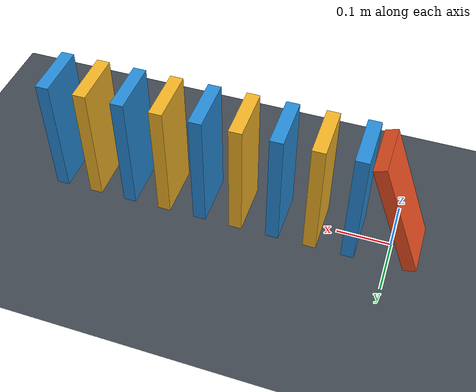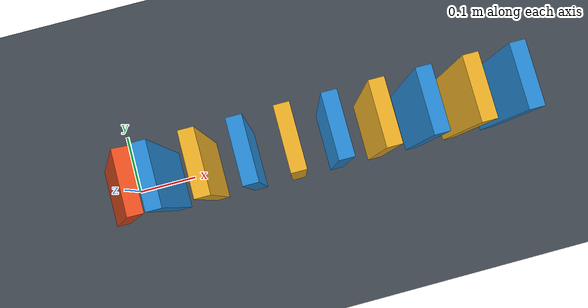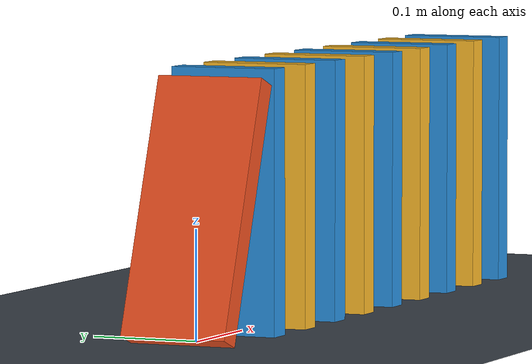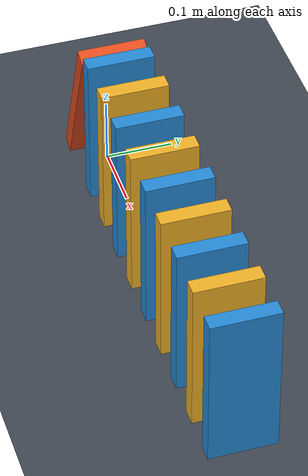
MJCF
<mujoco model="ten_dominoes">
  <compiler angle="degree"/>
  <option timestep="0.002"/>

  <worldbody>
    <light name="overhead_light" pos="0.35 -0.5 2" dir="0 0 -1"/>
    <geom name="floor" type="plane" pos="0 0 0" size="1.5 1 0.1" friction="1 0.005 0.0001" rgba="0.25 0.28 0.32 1"/>

    <body name="domino1" pos="0 0 0.1168673562" quat="0.984807753 0 0.173648178 0">
      <freejoint name="domino1_free"/>
      <geom name="domino1_geom" type="box" size="0.012 0.05 0.12" mass="0.1" friction="0.6 0.005 0.0001" rgba="0.9 0.3 0.12 1"/>
    </body>

    <body name="domino2" pos="0.07 0 0.12">
      <freejoint name="domino2_free"/>
      <geom name="domino2_geom" type="box" size="0.012 0.05 0.12" mass="0.1" friction="0.6 0.005 0.0001" rgba="0.15 0.55 0.85 1"/>
    </body>

    <body name="domino3" pos="0.14 0 0.12">
      <freejoint name="domino3_free"/>
      <geom name="domino3_geom" type="box" size="0.012 0.05 0.12" mass="0.1" friction="0.6 0.005 0.0001" rgba="0.95 0.7 0.15 1"/>
    </body>

    <body name="domino4" pos="0.21 0 0.12">
      <freejoint name="domino4_free"/>
      <geom name="domino4_geom" type="box" size="0.012 0.05 0.12" mass="0.1" friction="0.6 0.005 0.0001" rgba="0.15 0.55 0.85 1"/>
    </body>

    <body name="domino5" pos="0.28 0 0.12">
      <freejoint name="domino5_free"/>
      <geom name="domino5_geom" type="box" size="0.012 0.05 0.12" mass="0.1" friction="0.6 0.005 0.0001" rgba="0.95 0.7 0.15 1"/>
    </body>

    <body name="domino6" pos="0.35 0 0.12">
      <freejoint name="domino6_free"/>
      <geom name="domino6_geom" type="box" size="0.012 0.05 0.12" mass="0.1" friction="0.6 0.005 0.0001" rgba="0.15 0.55 0.85 1"/>
    </body>

    <body name="domino7" pos="0.42 0 0.12">
      <freejoint name="domino7_free"/>
      <geom name="domino7_geom" type="box" size="0.012 0.05 0.12" mass="0.1" friction="0.6 0.005 0.0001" rgba="0.95 0.7 0.15 1"/>
    </body>

    <body name="domino8" pos="0.49 0 0.12">
      <freejoint name="domino8_free"/>
      <geom name="domino8_geom" type="box" size="0.012 0.05 0.12" mass="0.1" friction="0.6 0.005 0.0001" rgba="0.15 0.55 0.85 1"/>
    </body>

    <body name="domino9" pos="0.56 0 0.12">
      <freejoint name="domino9_free"/>
      <geom name="domino9_geom" type="box" size="0.012 0.05 0.12" mass="0.1" friction="0.6 0.005 0.0001" rgba="0.95 0.7 0.15 1"/>
    </body>

    <body name="domino10" pos="0.63 0 0.12">
      <freejoint name="domino10_free"/>
      <geom name="domino10_geom" type="box" size="0.012 0.05 0.12" mass="0.1" friction="0.6 0.005 0.0001" rgba="0.15 0.55 0.85 1"/>
    </body>
  </worldbody>

  <keyframe>
    <key name="start"/>
  </keyframe>
</mujoco>
